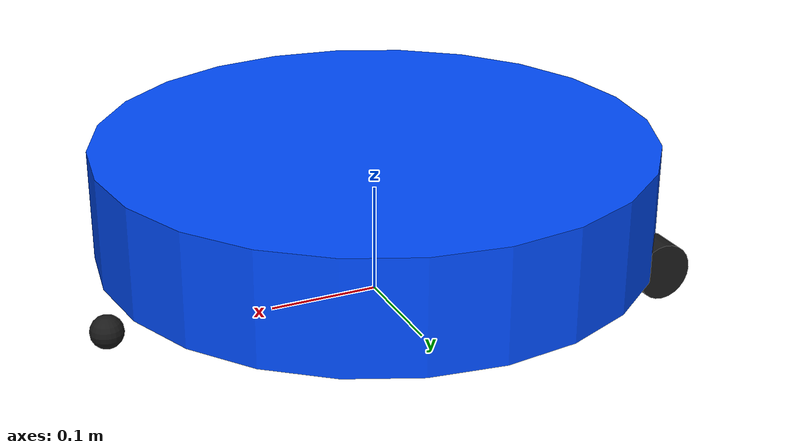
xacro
<?xml version="1.0"?>
<robot name="three_wheel_car" xmlns:xacro="http://www.ros.org/wiki/xacro">

  <!-- =====================
       PARAMETERS
  ===================== -->
  <xacro:property name="wheel_radius" value="0.025"/>
  <xacro:property name="wheel_width"  value="0.03"/>
  <xacro:property name="wheel_sep"    value="0.30"/>
  <xacro:property name="caster_radius" value="0.015"/>

  <!-- =====================
       MATERIALS
  ===================== -->
  <material name="blue">
    <color rgba="0.0 0.3 1.0 1.0"/>
  </material>

  <material name="black">
    <color rgba="0.1 0.1 0.1 1.0"/>
  </material>

  <!-- =====================
       BASE LINK
  ===================== -->
  <link name="base_link">
    <visual>
      <geometry>
        <cylinder radius="0.25" length="0.1"/>
      </geometry>
      <origin xyz="0 0 0.1"/>
      <material name="blue"/>
    </visual>

    <collision>
      <geometry>
        <cylinder radius="0.25" length="0.1"/>
      </geometry>
      <origin xyz="0 0 0.1"/>
    </collision>

    <inertial>
      <mass value="2.0"/>
      <origin xyz="0 0 0.1"/>
      <inertia ixx="0.05" iyy="0.05" izz="0.08"
               ixy="0" ixz="0" iyz="0"/>
    </inertial>
  </link>

  <!-- =====================
       REAR WHEEL MACRO
  ===================== -->
  <xacro:macro name="rear_wheel" params="name x y">
    <link name="${name}">
      <visual>
        <geometry>
          <cylinder radius="${wheel_radius}" length="${wheel_width}"/>
        </geometry>
        <origin rpy="1.5708 0 0"/>
        <material name="black"/>
      </visual>

      <collision>
        <geometry>
          <cylinder radius="${wheel_radius}" length="${wheel_width}"/>
        </geometry>
        <origin rpy="1.5708 0 0"/>
      </collision>

      <inertial>
        <mass value="0.3"/>
        <inertia ixx="0.001" iyy="0.001" izz="0.001"
                 ixy="0" ixz="0" iyz="0"/>
      </inertial>
    </link>

    <joint name="${name}_joint" type="continuous">
      <parent link="base_link"/>
      <child link="${name}"/>
      <origin xyz="${x} ${y} 0.05"/>
      <axis xyz="0 1 0"/>
    </joint>
  </xacro:macro>

 <!-- =====================
     FRONT CASTER WHEEL (SMALL)
===================== -->
<link name="front_caster">
  <visual>
    <origin xyz="0 0 -${caster_radius}"/>
    <geometry>
      <sphere radius="${caster_radius}"/>
    </geometry>
    <material name="black"/>
  </visual>

  <collision>
    <origin xyz="0 0 -${caster_radius}"/>
    <geometry>
      <sphere radius="${caster_radius}"/>
    </geometry>
  </collision>

  <inertial>
    <mass value="0.1"/>
    <origin xyz="0 0 -${caster_radius}"/>
    <inertia ixx="0.0001" iyy="0.0001" izz="0.0001"
             ixy="0" ixz="0" iyz="0"/>
  </inertial>
</link>

<joint name="front_caster_joint" type="continuous">
  <parent link="base_link"/>
  <child link="front_caster"/>
  <!-- height = rear wheel radius -->
  <origin xyz="0.25 0 ${wheel_radius}"/>
  <axis xyz="0 0 1"/>
</joint>

  <!-- =====================
       REAR DRIVEN WHEELS
  ===================== -->
  <xacro:rear_wheel name="left_wheel"  x="-0.2" y="0.15"/>
  <xacro:rear_wheel name="right_wheel" x="-0.2" y="-0.15"/>

  <!-- =====================
       GAZEBO DIFF DRIVE
  ===================== -->
  <gazebo>
    <plugin name="diff_drive" filename="libgazebo_ros_diff_drive.so">
      <ros>
        <namespace>/</namespace>
        <remapping>cmd_vel:=/cmd_vel</remapping>
        <remapping>odom:=/odom</remapping>
      </ros>

      <left_joint>left_wheel_joint</left_joint>
      <right_joint>right_wheel_joint</right_joint>

      <wheel_separation>${wheel_sep}</wheel_separation>
      <wheel_diameter>${2 * wheel_radius}</wheel_diameter>

      <odometry_frame>odom</odometry_frame>
      <robot_base_frame>base_link</robot_base_frame>

      <publish_odom>true</publish_odom>
      <publish_odom_tf>true</publish_odom_tf>
      <publish_wheel_tf>true</publish_wheel_tf>

      <update_rate>50</update_rate>
    </plugin>
  </gazebo>

</robot>
